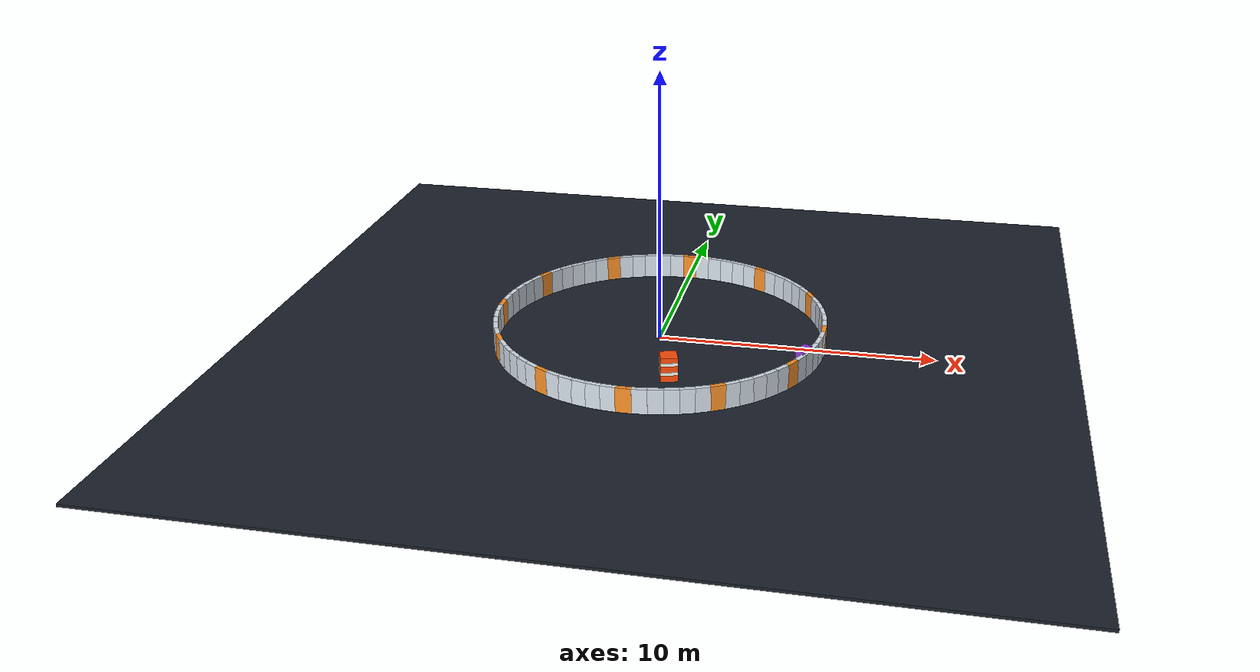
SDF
<sdf version="1.9">
 <world name="loop_course">
  <model name="ground">
   <static>true</static>
   <link name="ground">
    <collision name="ground_collision">
     <pose>0 0 -0.05 0 0 0</pose>
     <geometry><box><size>30 30 0.1</size></box></geometry>
    </collision>
    <visual name="ground_visual">
     <pose>0 0 -0.05 0 0 0</pose>
     <geometry><box><size>30 30 0.1</size></box></geometry>
     <material><ambient>0.105 0.13 0.17 1</ambient><diffuse>0.105 0.13 0.17 1</diffuse></material>
    </visual>
   </link>
  </model>
  <model name="outer_wall">
   <static>true</static>
   <link name="wall">
    <collision name="wall_0">
     <pose>6.0 0.0 0.45 0 0 1.5707963267948966</pose>
     <geometry><box><size>0.5489313149021448 0.16 0.9</size></box></geometry>
    </collision>
    <visual name="wall_visual_0">
     <pose>6.0 0.0 0.45 0 0 1.5707963267948966</pose>
     <geometry><box><size>0.5489313149021448 0.16 0.9</size></box></geometry>
     <material><ambient>0.98 0.57 0.16 1</ambient><diffuse>0.98 0.57 0.16 1</diffuse></material>
    </visual>
    <collision name="wall_1">
     <pose>5.977168188550474 0.522934456485949 0.45 0 0 1.658062789394613</pose>
     <geometry><box><size>0.5489313149021448 0.16 0.9</size></box></geometry>
    </collision>
    <visual name="wall_visual_1">
     <pose>5.977168188550474 0.522934456485949 0.45 0 0 1.658062789394613</pose>
     <geometry><box><size>0.5489313149021448 0.16 0.9</size></box></geometry>
     <material><ambient>0.84 0.88 0.92 1</ambient><diffuse>0.84 0.88 0.92 1</diffuse></material>
    </visual>
    <collision name="wall_2">
     <pose>5.908846518073248 1.041889066001582 0.45 0 0 1.7453292519943295</pose>
     <geometry><box><size>0.5489313149021448 0.16 0.9</size></box></geometry>
    </collision>
    <visual name="wall_visual_2">
     <pose>5.908846518073248 1.041889066001582 0.45 0 0 1.7453292519943295</pose>
     <geometry><box><size>0.5489313149021448 0.16 0.9</size></box></geometry>
     <material><ambient>0.84 0.88 0.92 1</ambient><diffuse>0.84 0.88 0.92 1</diffuse></material>
    </visual>
    <collision name="wall_3">
     <pose>5.79555495773441 1.5529142706151244 0.45 0 0 1.832595714594046</pose>
     <geometry><box><size>0.5489313149021448 0.16 0.9</size></box></geometry>
    </collision>
    <visual name="wall_visual_3">
     <pose>5.79555495773441 1.5529142706151244 0.45 0 0 1.832595714594046</pose>
     <geometry><box><size>0.5489313149021448 0.16 0.9</size></box></geometry>
     <material><ambient>0.84 0.88 0.92 1</ambient><diffuse>0.84 0.88 0.92 1</diffuse></material>
    </visual>
    <collision name="wall_4">
     <pose>5.638155724715451 2.0521208599540124 0.45 0 0 1.9198621771937625</pose>
     <geometry><box><size>0.5489313149021448 0.16 0.9</size></box></geometry>
    </collision>
    <visual name="wall_visual_4">
     <pose>5.638155724715451 2.0521208599540124 0.45 0 0 1.9198621771937625</pose>
     <geometry><box><size>0.5489313149021448 0.16 0.9</size></box></geometry>
     <material><ambient>0.84 0.88 0.92 1</ambient><diffuse>0.84 0.88 0.92 1</diffuse></material>
    </visual>
    <collision name="wall_5">
     <pose>5.437846722219899 2.5357095704441965 0.45 0 0 2.007128639793479</pose>
     <geometry><box><size>0.5489313149021448 0.16 0.9</size></box></geometry>
    </collision>
    <visual name="wall_visual_5">
     <pose>5.437846722219899 2.5357095704441965 0.45 0 0 2.007128639793479</pose>
     <geometry><box><size>0.5489313149021448 0.16 0.9</size></box></geometry>
     <material><ambient>0.84 0.88 0.92 1</ambient><diffuse>0.84 0.88 0.92 1</diffuse></material>
    </visual>
    <collision name="wall_6">
     <pose>5.196152422706632 2.9999999999999996 0.45 0 0 2.0943951023931953</pose>
     <geometry><box><size>0.5489313149021448 0.16 0.9</size></box></geometry>
    </collision>
    <visual name="wall_visual_6">
     <pose>5.196152422706632 2.9999999999999996 0.45 0 0 2.0943951023931953</pose>
     <geometry><box><size>0.5489313149021448 0.16 0.9</size></box></geometry>
     <material><ambient>0.98 0.57 0.16 1</ambient><diffuse>0.98 0.57 0.16 1</diffuse></material>
    </visual>
    <collision name="wall_7">
     <pose>4.914912265733951 3.4414586181062763 0.45 0 0 2.181661564992912</pose>
     <geometry><box><size>0.5489313149021448 0.16 0.9</size></box></geometry>
    </collision>
    <visual name="wall_visual_7">
     <pose>4.914912265733951 3.4414586181062763 0.45 0 0 2.181661564992912</pose>
     <geometry><box><size>0.5489313149021448 0.16 0.9</size></box></geometry>
     <material><ambient>0.84 0.88 0.92 1</ambient><diffuse>0.84 0.88 0.92 1</diffuse></material>
    </visual>
    <collision name="wall_8">
     <pose>4.596266658713868 3.8567256581192355 0.45 0 0 2.2689280275926285</pose>
     <geometry><box><size>0.5489313149021448 0.16 0.9</size></box></geometry>
    </collision>
    <visual name="wall_visual_8">
     <pose>4.596266658713868 3.8567256581192355 0.45 0 0 2.2689280275926285</pose>
     <geometry><box><size>0.5489313149021448 0.16 0.9</size></box></geometry>
     <material><ambient>0.84 0.88 0.92 1</ambient><diffuse>0.84 0.88 0.92 1</diffuse></material>
    </visual>
    <collision name="wall_9">
     <pose>4.242640687119286 4.242640687119285 0.45 0 0 2.356194490192345</pose>
     <geometry><box><size>0.5489313149021448 0.16 0.9</size></box></geometry>
    </collision>
    <visual name="wall_visual_9">
     <pose>4.242640687119286 4.242640687119285 0.45 0 0 2.356194490192345</pose>
     <geometry><box><size>0.5489313149021448 0.16 0.9</size></box></geometry>
     <material><ambient>0.84 0.88 0.92 1</ambient><diffuse>0.84 0.88 0.92 1</diffuse></material>
    </visual>
    <collision name="wall_10">
     <pose>3.8567256581192364 4.596266658713868 0.45 0 0 2.443460952792061</pose>
     <geometry><box><size>0.5489313149021448 0.16 0.9</size></box></geometry>
    </collision>
    <visual name="wall_visual_10">
     <pose>3.8567256581192364 4.596266658713868 0.45 0 0 2.443460952792061</pose>
     <geometry><box><size>0.5489313149021448 0.16 0.9</size></box></geometry>
     <material><ambient>0.84 0.88 0.92 1</ambient><diffuse>0.84 0.88 0.92 1</diffuse></material>
    </visual>
    <collision name="wall_11">
     <pose>3.441458618106277 4.91491226573395 0.45 0 0 2.5307274153917776</pose>
     <geometry><box><size>0.5489313149021448 0.16 0.9</size></box></geometry>
    </collision>
    <visual name="wall_visual_11">
     <pose>3.441458618106277 4.91491226573395 0.45 0 0 2.5307274153917776</pose>
     <geometry><box><size>0.5489313149021448 0.16 0.9</size></box></geometry>
     <material><ambient>0.84 0.88 0.92 1</ambient><diffuse>0.84 0.88 0.92 1</diffuse></material>
    </visual>
    <collision name="wall_12">
     <pose>3.000000000000001 5.196152422706632 0.45 0 0 2.617993877991494</pose>
     <geometry><box><size>0.5489313149021448 0.16 0.9</size></box></geometry>
    </collision>
    <visual name="wall_visual_12">
     <pose>3.000000000000001 5.196152422706632 0.45 0 0 2.617993877991494</pose>
     <geometry><box><size>0.5489313149021448 0.16 0.9</size></box></geometry>
     <material><ambient>0.98 0.57 0.16 1</ambient><diffuse>0.98 0.57 0.16 1</diffuse></material>
    </visual>
    <collision name="wall_13">
     <pose>2.5357095704441965 5.437846722219899 0.45 0 0 2.705260340591211</pose>
     <geometry><box><size>0.5489313149021448 0.16 0.9</size></box></geometry>
    </collision>
    <visual name="wall_visual_13">
     <pose>2.5357095704441965 5.437846722219899 0.45 0 0 2.705260340591211</pose>
     <geometry><box><size>0.5489313149021448 0.16 0.9</size></box></geometry>
     <material><ambient>0.84 0.88 0.92 1</ambient><diffuse>0.84 0.88 0.92 1</diffuse></material>
    </visual>
    <collision name="wall_14">
     <pose>2.052120859954013 5.63815572471545 0.45 0 0 2.792526803190927</pose>
     <geometry><box><size>0.5489313149021448 0.16 0.9</size></box></geometry>
    </collision>
    <visual name="wall_visual_14">
     <pose>2.052120859954013 5.63815572471545 0.45 0 0 2.792526803190927</pose>
     <geometry><box><size>0.5489313149021448 0.16 0.9</size></box></geometry>
     <material><ambient>0.84 0.88 0.92 1</ambient><diffuse>0.84 0.88 0.92 1</diffuse></material>
    </visual>
    <collision name="wall_15">
     <pose>1.5529142706151258 5.795554957734409 0.45 0 0 2.8797932657906435</pose>
     <geometry><box><size>0.5489313149021448 0.16 0.9</size></box></geometry>
    </collision>
    <visual name="wall_visual_15">
     <pose>1.5529142706151258 5.795554957734409 0.45 0 0 2.8797932657906435</pose>
     <geometry><box><size>0.5489313149021448 0.16 0.9</size></box></geometry>
     <material><ambient>0.84 0.88 0.92 1</ambient><diffuse>0.84 0.88 0.92 1</diffuse></material>
    </visual>
    <collision name="wall_16">
     <pose>1.0418890660015825 5.908846518073248 0.45 0 0 2.9670597283903604</pose>
     <geometry><box><size>0.5489313149021448 0.16 0.9</size></box></geometry>
    </collision>
    <visual name="wall_visual_16">
     <pose>1.0418890660015825 5.908846518073248 0.45 0 0 2.9670597283903604</pose>
     <geometry><box><size>0.5489313149021448 0.16 0.9</size></box></geometry>
     <material><ambient>0.84 0.88 0.92 1</ambient><diffuse>0.84 0.88 0.92 1</diffuse></material>
    </visual>
    <collision name="wall_17">
     <pose>0.5229344564859488 5.977168188550474 0.45 0 0 3.0543261909900767</pose>
     <geometry><box><size>0.5489313149021448 0.16 0.9</size></box></geometry>
    </collision>
    <visual name="wall_visual_17">
     <pose>0.5229344564859488 5.977168188550474 0.45 0 0 3.0543261909900767</pose>
     <geometry><box><size>0.5489313149021448 0.16 0.9</size></box></geometry>
     <material><ambient>0.84 0.88 0.92 1</ambient><diffuse>0.84 0.88 0.92 1</diffuse></material>
    </visual>
    <collision name="wall_18">
     <pose>3.6739403974420594e-16 6.0 0.45 0 0 3.141592653589793</pose>
     <geometry><box><size>0.5489313149021448 0.16 0.9</size></box></geometry>
    </collision>
    <visual name="wall_visual_18">
     <pose>3.6739403974420594e-16 6.0 0.45 0 0 3.141592653589793</pose>
     <geometry><box><size>0.5489313149021448 0.16 0.9</size></box></geometry>
     <material><ambient>0.98 0.57 0.16 1</ambient><diffuse>0.98 0.57 0.16 1</diffuse></material>
    </visual>
    <collision name="wall_19">
     <pose>-0.522934456485948 5.977168188550474 0.45 0 0 3.2288591161895095</pose>
     <geometry><box><size>0.5489313149021448 0.16 0.9</size></box></geometry>
    </collision>
    <visual name="wall_visual_19">
     <pose>-0.522934456485948 5.977168188550474 0.45 0 0 3.2288591161895095</pose>
     <geometry><box><size>0.5489313149021448 0.16 0.9</size></box></geometry>
     <material><ambient>0.84 0.88 0.92 1</ambient><diffuse>0.84 0.88 0.92 1</diffuse></material>
    </visual>
    <collision name="wall_20">
     <pose>-1.0418890660015818 5.908846518073248 0.45 0 0 3.316125578789226</pose>
     <geometry><box><size>0.5489313149021448 0.16 0.9</size></box></geometry>
    </collision>
    <visual name="wall_visual_20">
     <pose>-1.0418890660015818 5.908846518073248 0.45 0 0 3.316125578789226</pose>
     <geometry><box><size>0.5489313149021448 0.16 0.9</size></box></geometry>
     <material><ambient>0.84 0.88 0.92 1</ambient><diffuse>0.84 0.88 0.92 1</diffuse></material>
    </visual>
    <collision name="wall_21">
     <pose>-1.552914270615125 5.79555495773441 0.45 0 0 3.4033920413889427</pose>
     <geometry><box><size>0.5489313149021448 0.16 0.9</size></box></geometry>
    </collision>
    <visual name="wall_visual_21">
     <pose>-1.552914270615125 5.79555495773441 0.45 0 0 3.4033920413889427</pose>
     <geometry><box><size>0.5489313149021448 0.16 0.9</size></box></geometry>
     <material><ambient>0.84 0.88 0.92 1</ambient><diffuse>0.84 0.88 0.92 1</diffuse></material>
    </visual>
    <collision name="wall_22">
     <pose>-2.052120859954011 5.638155724715451 0.45 0 0 3.4906585039886586</pose>
     <geometry><box><size>0.5489313149021448 0.16 0.9</size></box></geometry>
    </collision>
    <visual name="wall_visual_22">
     <pose>-2.052120859954011 5.638155724715451 0.45 0 0 3.4906585039886586</pose>
     <geometry><box><size>0.5489313149021448 0.16 0.9</size></box></geometry>
     <material><ambient>0.84 0.88 0.92 1</ambient><diffuse>0.84 0.88 0.92 1</diffuse></material>
    </visual>
    <collision name="wall_23">
     <pose>-2.535709570444196 5.4378467222199 0.45 0 0 3.5779249665883754</pose>
     <geometry><box><size>0.5489313149021448 0.16 0.9</size></box></geometry>
    </collision>
    <visual name="wall_visual_23">
     <pose>-2.535709570444196 5.4378467222199 0.45 0 0 3.5779249665883754</pose>
     <geometry><box><size>0.5489313149021448 0.16 0.9</size></box></geometry>
     <material><ambient>0.84 0.88 0.92 1</ambient><diffuse>0.84 0.88 0.92 1</diffuse></material>
    </visual>
    <collision name="wall_24">
     <pose>-2.9999999999999987 5.196152422706632 0.45 0 0 3.665191429188092</pose>
     <geometry><box><size>0.5489313149021448 0.16 0.9</size></box></geometry>
    </collision>
    <visual name="wall_visual_24">
     <pose>-2.9999999999999987 5.196152422706632 0.45 0 0 3.665191429188092</pose>
     <geometry><box><size>0.5489313149021448 0.16 0.9</size></box></geometry>
     <material><ambient>0.98 0.57 0.16 1</ambient><diffuse>0.98 0.57 0.16 1</diffuse></material>
    </visual>
    <collision name="wall_25">
     <pose>-3.441458618106277 4.91491226573395 0.45 0 0 3.7524578917878086</pose>
     <geometry><box><size>0.5489313149021448 0.16 0.9</size></box></geometry>
    </collision>
    <visual name="wall_visual_25">
     <pose>-3.441458618106277 4.91491226573395 0.45 0 0 3.7524578917878086</pose>
     <geometry><box><size>0.5489313149021448 0.16 0.9</size></box></geometry>
     <material><ambient>0.84 0.88 0.92 1</ambient><diffuse>0.84 0.88 0.92 1</diffuse></material>
    </visual>
    <collision name="wall_26">
     <pose>-3.8567256581192364 4.596266658713868 0.45 0 0 3.839724354387525</pose>
     <geometry><box><size>0.5489313149021448 0.16 0.9</size></box></geometry>
    </collision>
    <visual name="wall_visual_26">
     <pose>-3.8567256581192364 4.596266658713868 0.45 0 0 3.839724354387525</pose>
     <geometry><box><size>0.5489313149021448 0.16 0.9</size></box></geometry>
     <material><ambient>0.84 0.88 0.92 1</ambient><diffuse>0.84 0.88 0.92 1</diffuse></material>
    </visual>
    <collision name="wall_27">
     <pose>-4.242640687119285 4.242640687119286 0.45 0 0 3.9269908169872414</pose>
     <geometry><box><size>0.5489313149021448 0.16 0.9</size></box></geometry>
    </collision>
    <visual name="wall_visual_27">
     <pose>-4.242640687119285 4.242640687119286 0.45 0 0 3.9269908169872414</pose>
     <geometry><box><size>0.5489313149021448 0.16 0.9</size></box></geometry>
     <material><ambient>0.84 0.88 0.92 1</ambient><diffuse>0.84 0.88 0.92 1</diffuse></material>
    </visual>
    <collision name="wall_28">
     <pose>-4.596266658713867 3.856725658119237 0.45 0 0 4.014257279586958</pose>
     <geometry><box><size>0.5489313149021448 0.16 0.9</size></box></geometry>
    </collision>
    <visual name="wall_visual_28">
     <pose>-4.596266658713867 3.856725658119237 0.45 0 0 4.014257279586958</pose>
     <geometry><box><size>0.5489313149021448 0.16 0.9</size></box></geometry>
     <material><ambient>0.84 0.88 0.92 1</ambient><diffuse>0.84 0.88 0.92 1</diffuse></material>
    </visual>
    <collision name="wall_29">
     <pose>-4.9149122657339515 3.4414586181062754 0.45 0 0 4.101523742186675</pose>
     <geometry><box><size>0.5489313149021448 0.16 0.9</size></box></geometry>
    </collision>
    <visual name="wall_visual_29">
     <pose>-4.9149122657339515 3.4414586181062754 0.45 0 0 4.101523742186675</pose>
     <geometry><box><size>0.5489313149021448 0.16 0.9</size></box></geometry>
     <material><ambient>0.84 0.88 0.92 1</ambient><diffuse>0.84 0.88 0.92 1</diffuse></material>
    </visual>
    <collision name="wall_30">
     <pose>-5.196152422706631 3.0000000000000018 0.45 0 0 4.1887902047863905</pose>
     <geometry><box><size>0.5489313149021448 0.16 0.9</size></box></geometry>
    </collision>
    <visual name="wall_visual_30">
     <pose>-5.196152422706631 3.0000000000000018 0.45 0 0 4.1887902047863905</pose>
     <geometry><box><size>0.5489313149021448 0.16 0.9</size></box></geometry>
     <material><ambient>0.98 0.57 0.16 1</ambient><diffuse>0.98 0.57 0.16 1</diffuse></material>
    </visual>
    <collision name="wall_31">
     <pose>-5.437846722219899 2.535709570444197 0.45 0 0 4.276056667386108</pose>
     <geometry><box><size>0.5489313149021448 0.16 0.9</size></box></geometry>
    </collision>
    <visual name="wall_visual_31">
     <pose>-5.437846722219899 2.535709570444197 0.45 0 0 4.276056667386108</pose>
     <geometry><box><size>0.5489313149021448 0.16 0.9</size></box></geometry>
     <material><ambient>0.84 0.88 0.92 1</ambient><diffuse>0.84 0.88 0.92 1</diffuse></material>
    </visual>
    <collision name="wall_32">
     <pose>-5.63815572471545 2.0521208599540133 0.45 0 0 4.363323129985824</pose>
     <geometry><box><size>0.5489313149021448 0.16 0.9</size></box></geometry>
    </collision>
    <visual name="wall_visual_32">
     <pose>-5.63815572471545 2.0521208599540133 0.45 0 0 4.363323129985824</pose>
     <geometry><box><size>0.5489313149021448 0.16 0.9</size></box></geometry>
     <material><ambient>0.84 0.88 0.92 1</ambient><diffuse>0.84 0.88 0.92 1</diffuse></material>
    </visual>
    <collision name="wall_33">
     <pose>-5.79555495773441 1.5529142706151235 0.45 0 0 4.4505895925855405</pose>
     <geometry><box><size>0.5489313149021448 0.16 0.9</size></box></geometry>
    </collision>
    <visual name="wall_visual_33">
     <pose>-5.79555495773441 1.5529142706151235 0.45 0 0 4.4505895925855405</pose>
     <geometry><box><size>0.5489313149021448 0.16 0.9</size></box></geometry>
     <material><ambient>0.84 0.88 0.92 1</ambient><diffuse>0.84 0.88 0.92 1</diffuse></material>
    </visual>
    <collision name="wall_34">
     <pose>-5.908846518073248 1.0418890660015816 0.45 0 0 4.537856055185257</pose>
     <geometry><box><size>0.5489313149021448 0.16 0.9</size></box></geometry>
    </collision>
    <visual name="wall_visual_34">
     <pose>-5.908846518073248 1.0418890660015816 0.45 0 0 4.537856055185257</pose>
     <geometry><box><size>0.5489313149021448 0.16 0.9</size></box></geometry>
     <material><ambient>0.84 0.88 0.92 1</ambient><diffuse>0.84 0.88 0.92 1</diffuse></material>
    </visual>
    <collision name="wall_35">
     <pose>-5.977168188550474 0.5229344564859492 0.45 0 0 4.625122517784973</pose>
     <geometry><box><size>0.5489313149021448 0.16 0.9</size></box></geometry>
    </collision>
    <visual name="wall_visual_35">
     <pose>-5.977168188550474 0.5229344564859492 0.45 0 0 4.625122517784973</pose>
     <geometry><box><size>0.5489313149021448 0.16 0.9</size></box></geometry>
     <material><ambient>0.84 0.88 0.92 1</ambient><diffuse>0.84 0.88 0.92 1</diffuse></material>
    </visual>
    <collision name="wall_36">
     <pose>-6.0 7.347880794884119e-16 0.45 0 0 4.71238898038469</pose>
     <geometry><box><size>0.5489313149021448 0.16 0.9</size></box></geometry>
    </collision>
    <visual name="wall_visual_36">
     <pose>-6.0 7.347880794884119e-16 0.45 0 0 4.71238898038469</pose>
     <geometry><box><size>0.5489313149021448 0.16 0.9</size></box></geometry>
     <material><ambient>0.98 0.57 0.16 1</ambient><diffuse>0.98 0.57 0.16 1</diffuse></material>
    </visual>
    <collision name="wall_37">
     <pose>-5.977168188550474 -0.5229344564859477 0.45 0 0 4.799655442984406</pose>
     <geometry><box><size>0.5489313149021448 0.16 0.9</size></box></geometry>
    </collision>
    <visual name="wall_visual_37">
     <pose>-5.977168188550474 -0.5229344564859477 0.45 0 0 4.799655442984406</pose>
     <geometry><box><size>0.5489313149021448 0.16 0.9</size></box></geometry>
     <material><ambient>0.84 0.88 0.92 1</ambient><diffuse>0.84 0.88 0.92 1</diffuse></material>
    </visual>
    <collision name="wall_38">
     <pose>-5.908846518073249 -1.04188906600158 0.45 0 0 4.886921905584122</pose>
     <geometry><box><size>0.5489313149021448 0.16 0.9</size></box></geometry>
    </collision>
    <visual name="wall_visual_38">
     <pose>-5.908846518073249 -1.04188906600158 0.45 0 0 4.886921905584122</pose>
     <geometry><box><size>0.5489313149021448 0.16 0.9</size></box></geometry>
     <material><ambient>0.84 0.88 0.92 1</ambient><diffuse>0.84 0.88 0.92 1</diffuse></material>
    </visual>
    <collision name="wall_39">
     <pose>-5.79555495773441 -1.5529142706151222 0.45 0 0 4.974188368183839</pose>
     <geometry><box><size>0.5489313149021448 0.16 0.9</size></box></geometry>
    </collision>
    <visual name="wall_visual_39">
     <pose>-5.79555495773441 -1.5529142706151222 0.45 0 0 4.974188368183839</pose>
     <geometry><box><size>0.5489313149021448 0.16 0.9</size></box></geometry>
     <material><ambient>0.84 0.88 0.92 1</ambient><diffuse>0.84 0.88 0.92 1</diffuse></material>
    </visual>
    <collision name="wall_40">
     <pose>-5.638155724715451 -2.052120859954012 0.45 0 0 5.061454830783555</pose>
     <geometry><box><size>0.5489313149021448 0.16 0.9</size></box></geometry>
    </collision>
    <visual name="wall_visual_40">
     <pose>-5.638155724715451 -2.052120859954012 0.45 0 0 5.061454830783555</pose>
     <geometry><box><size>0.5489313149021448 0.16 0.9</size></box></geometry>
     <material><ambient>0.84 0.88 0.92 1</ambient><diffuse>0.84 0.88 0.92 1</diffuse></material>
    </visual>
    <collision name="wall_41">
     <pose>-5.437846722219902 -2.5357095704441934 0.45 0 0 5.148721293383272</pose>
     <geometry><box><size>0.5489313149021448 0.16 0.9</size></box></geometry>
    </collision>
    <visual name="wall_visual_41">
     <pose>-5.437846722219902 -2.5357095704441934 0.45 0 0 5.148721293383272</pose>
     <geometry><box><size>0.5489313149021448 0.16 0.9</size></box></geometry>
     <material><ambient>0.84 0.88 0.92 1</ambient><diffuse>0.84 0.88 0.92 1</diffuse></material>
    </visual>
    <collision name="wall_42">
     <pose>-5.196152422706632 -3.000000000000001 0.45 0 0 5.235987755982989</pose>
     <geometry><box><size>0.5489313149021448 0.16 0.9</size></box></geometry>
    </collision>
    <visual name="wall_visual_42">
     <pose>-5.196152422706632 -3.000000000000001 0.45 0 0 5.235987755982989</pose>
     <geometry><box><size>0.5489313149021448 0.16 0.9</size></box></geometry>
     <material><ambient>0.98 0.57 0.16 1</ambient><diffuse>0.98 0.57 0.16 1</diffuse></material>
    </visual>
    <collision name="wall_43">
     <pose>-4.914912265733952 -3.441458618106275 0.45 0 0 5.323254218582704</pose>
     <geometry><box><size>0.5489313149021448 0.16 0.9</size></box></geometry>
    </collision>
    <visual name="wall_visual_43">
     <pose>-4.914912265733952 -3.441458618106275 0.45 0 0 5.323254218582704</pose>
     <geometry><box><size>0.5489313149021448 0.16 0.9</size></box></geometry>
     <material><ambient>0.84 0.88 0.92 1</ambient><diffuse>0.84 0.88 0.92 1</diffuse></material>
    </visual>
    <collision name="wall_44">
     <pose>-4.59626665871387 -3.8567256581192337 0.45 0 0 5.410520681182421</pose>
     <geometry><box><size>0.5489313149021448 0.16 0.9</size></box></geometry>
    </collision>
    <visual name="wall_visual_44">
     <pose>-4.59626665871387 -3.8567256581192337 0.45 0 0 5.410520681182421</pose>
     <geometry><box><size>0.5489313149021448 0.16 0.9</size></box></geometry>
     <material><ambient>0.84 0.88 0.92 1</ambient><diffuse>0.84 0.88 0.92 1</diffuse></material>
    </visual>
    <collision name="wall_45">
     <pose>-4.242640687119286 -4.242640687119285 0.45 0 0 5.497787143782138</pose>
     <geometry><box><size>0.5489313149021448 0.16 0.9</size></box></geometry>
    </collision>
    <visual name="wall_visual_45">
     <pose>-4.242640687119286 -4.242640687119285 0.45 0 0 5.497787143782138</pose>
     <geometry><box><size>0.5489313149021448 0.16 0.9</size></box></geometry>
     <material><ambient>0.84 0.88 0.92 1</ambient><diffuse>0.84 0.88 0.92 1</diffuse></material>
    </visual>
    <collision name="wall_46">
     <pose>-3.856725658119237 -4.596266658713867 0.45 0 0 5.585053606381854</pose>
     <geometry><box><size>0.5489313149021448 0.16 0.9</size></box></geometry>
    </collision>
    <visual name="wall_visual_46">
     <pose>-3.856725658119237 -4.596266658713867 0.45 0 0 5.585053606381854</pose>
     <geometry><box><size>0.5489313149021448 0.16 0.9</size></box></geometry>
     <material><ambient>0.84 0.88 0.92 1</ambient><diffuse>0.84 0.88 0.92 1</diffuse></material>
    </visual>
    <collision name="wall_47">
     <pose>-3.4414586181062745 -4.914912265733953 0.45 0 0 5.672320068981572</pose>
     <geometry><box><size>0.5489313149021448 0.16 0.9</size></box></geometry>
    </collision>
    <visual name="wall_visual_47">
     <pose>-3.4414586181062745 -4.914912265733953 0.45 0 0 5.672320068981572</pose>
     <geometry><box><size>0.5489313149021448 0.16 0.9</size></box></geometry>
     <material><ambient>0.84 0.88 0.92 1</ambient><diffuse>0.84 0.88 0.92 1</diffuse></material>
    </visual>
    <collision name="wall_48">
     <pose>-3.0000000000000027 -5.19615242270663 0.45 0 0 5.759586531581287</pose>
     <geometry><box><size>0.5489313149021448 0.16 0.9</size></box></geometry>
    </collision>
    <visual name="wall_visual_48">
     <pose>-3.0000000000000027 -5.19615242270663 0.45 0 0 5.759586531581287</pose>
     <geometry><box><size>0.5489313149021448 0.16 0.9</size></box></geometry>
     <material><ambient>0.98 0.57 0.16 1</ambient><diffuse>0.98 0.57 0.16 1</diffuse></material>
    </visual>
    <collision name="wall_49">
     <pose>-2.5357095704441996 -5.4378467222198985 0.45 0 0 5.8468529941810035</pose>
     <geometry><box><size>0.5489313149021448 0.16 0.9</size></box></geometry>
    </collision>
    <visual name="wall_visual_49">
     <pose>-2.5357095704441996 -5.4378467222198985 0.45 0 0 5.8468529941810035</pose>
     <geometry><box><size>0.5489313149021448 0.16 0.9</size></box></geometry>
     <material><ambient>0.84 0.88 0.92 1</ambient><diffuse>0.84 0.88 0.92 1</diffuse></material>
    </visual>
    <collision name="wall_50">
     <pose>-2.0521208599540115 -5.638155724715451 0.45 0 0 5.934119456780721</pose>
     <geometry><box><size>0.5489313149021448 0.16 0.9</size></box></geometry>
    </collision>
    <visual name="wall_visual_50">
     <pose>-2.0521208599540115 -5.638155724715451 0.45 0 0 5.934119456780721</pose>
     <geometry><box><size>0.5489313149021448 0.16 0.9</size></box></geometry>
     <material><ambient>0.84 0.88 0.92 1</ambient><diffuse>0.84 0.88 0.92 1</diffuse></material>
    </visual>
    <collision name="wall_51">
     <pose>-1.5529142706151238 -5.79555495773441 0.45 0 0 6.021385919380437</pose>
     <geometry><box><size>0.5489313149021448 0.16 0.9</size></box></geometry>
    </collision>
    <visual name="wall_visual_51">
     <pose>-1.5529142706151238 -5.79555495773441 0.45 0 0 6.021385919380437</pose>
     <geometry><box><size>0.5489313149021448 0.16 0.9</size></box></geometry>
     <material><ambient>0.84 0.88 0.92 1</ambient><diffuse>0.84 0.88 0.92 1</diffuse></material>
    </visual>
    <collision name="wall_52">
     <pose>-1.041889066001582 -5.908846518073248 0.45 0 0 6.1086523819801535</pose>
     <geometry><box><size>0.5489313149021448 0.16 0.9</size></box></geometry>
    </collision>
    <visual name="wall_visual_52">
     <pose>-1.041889066001582 -5.908846518073248 0.45 0 0 6.1086523819801535</pose>
     <geometry><box><size>0.5489313149021448 0.16 0.9</size></box></geometry>
     <material><ambient>0.84 0.88 0.92 1</ambient><diffuse>0.84 0.88 0.92 1</diffuse></material>
    </visual>
    <collision name="wall_53">
     <pose>-0.5229344564859495 -5.977168188550474 0.45 0 0 6.19591884457987</pose>
     <geometry><box><size>0.5489313149021448 0.16 0.9</size></box></geometry>
    </collision>
    <visual name="wall_visual_53">
     <pose>-0.5229344564859495 -5.977168188550474 0.45 0 0 6.19591884457987</pose>
     <geometry><box><size>0.5489313149021448 0.16 0.9</size></box></geometry>
     <material><ambient>0.84 0.88 0.92 1</ambient><diffuse>0.84 0.88 0.92 1</diffuse></material>
    </visual>
    <collision name="wall_54">
     <pose>-1.102182119232618e-15 -6.0 0.45 0 0 6.283185307179586</pose>
     <geometry><box><size>0.5489313149021448 0.16 0.9</size></box></geometry>
    </collision>
    <visual name="wall_visual_54">
     <pose>-1.102182119232618e-15 -6.0 0.45 0 0 6.283185307179586</pose>
     <geometry><box><size>0.5489313149021448 0.16 0.9</size></box></geometry>
     <material><ambient>0.98 0.57 0.16 1</ambient><diffuse>0.98 0.57 0.16 1</diffuse></material>
    </visual>
    <collision name="wall_55">
     <pose>0.5229344564859473 -5.977168188550474 0.45 0 0 6.370451769779303</pose>
     <geometry><box><size>0.5489313149021448 0.16 0.9</size></box></geometry>
    </collision>
    <visual name="wall_visual_55">
     <pose>0.5229344564859473 -5.977168188550474 0.45 0 0 6.370451769779303</pose>
     <geometry><box><size>0.5489313149021448 0.16 0.9</size></box></geometry>
     <material><ambient>0.84 0.88 0.92 1</ambient><diffuse>0.84 0.88 0.92 1</diffuse></material>
    </visual>
    <collision name="wall_56">
     <pose>1.0418890660015798 -5.908846518073249 0.45 0 0 6.457718232379019</pose>
     <geometry><box><size>0.5489313149021448 0.16 0.9</size></box></geometry>
    </collision>
    <visual name="wall_visual_56">
     <pose>1.0418890660015798 -5.908846518073249 0.45 0 0 6.457718232379019</pose>
     <geometry><box><size>0.5489313149021448 0.16 0.9</size></box></geometry>
     <material><ambient>0.84 0.88 0.92 1</ambient><diffuse>0.84 0.88 0.92 1</diffuse></material>
    </visual>
    <collision name="wall_57">
     <pose>1.5529142706151218 -5.79555495773441 0.45 0 0 6.544984694978735</pose>
     <geometry><box><size>0.5489313149021448 0.16 0.9</size></box></geometry>
    </collision>
    <visual name="wall_visual_57">
     <pose>1.5529142706151218 -5.79555495773441 0.45 0 0 6.544984694978735</pose>
     <geometry><box><size>0.5489313149021448 0.16 0.9</size></box></geometry>
     <material><ambient>0.84 0.88 0.92 1</ambient><diffuse>0.84 0.88 0.92 1</diffuse></material>
    </visual>
    <collision name="wall_58">
     <pose>2.052120859954014 -5.63815572471545 0.45 0 0 6.632251157578453</pose>
     <geometry><box><size>0.5489313149021448 0.16 0.9</size></box></geometry>
    </collision>
    <visual name="wall_visual_58">
     <pose>2.052120859954014 -5.63815572471545 0.45 0 0 6.632251157578453</pose>
     <geometry><box><size>0.5489313149021448 0.16 0.9</size></box></geometry>
     <material><ambient>0.84 0.88 0.92 1</ambient><diffuse>0.84 0.88 0.92 1</diffuse></material>
    </visual>
    <collision name="wall_59">
     <pose>2.535709570444193 -5.437846722219902 0.45 0 0 6.719517620178168</pose>
     <geometry><box><size>0.5489313149021448 0.16 0.9</size></box></geometry>
    </collision>
    <visual name="wall_visual_59">
     <pose>2.535709570444193 -5.437846722219902 0.45 0 0 6.719517620178168</pose>
     <geometry><box><size>0.5489313149021448 0.16 0.9</size></box></geometry>
     <material><ambient>0.84 0.88 0.92 1</ambient><diffuse>0.84 0.88 0.92 1</diffuse></material>
    </visual>
    <collision name="wall_60">
     <pose>2.999999999999996 -5.196152422706634 0.45 0 0 6.8067840827778845</pose>
     <geometry><box><size>0.5489313149021448 0.16 0.9</size></box></geometry>
    </collision>
    <visual name="wall_visual_60">
     <pose>2.999999999999996 -5.196152422706634 0.45 0 0 6.8067840827778845</pose>
     <geometry><box><size>0.5489313149021448 0.16 0.9</size></box></geometry>
     <material><ambient>0.98 0.57 0.16 1</ambient><diffuse>0.98 0.57 0.16 1</diffuse></material>
    </visual>
    <collision name="wall_61">
     <pose>3.4414586181062763 -4.914912265733951 0.45 0 0 6.894050545377602</pose>
     <geometry><box><size>0.5489313149021448 0.16 0.9</size></box></geometry>
    </collision>
    <visual name="wall_visual_61">
     <pose>3.4414586181062763 -4.914912265733951 0.45 0 0 6.894050545377602</pose>
     <geometry><box><size>0.5489313149021448 0.16 0.9</size></box></geometry>
     <material><ambient>0.84 0.88 0.92 1</ambient><diffuse>0.84 0.88 0.92 1</diffuse></material>
    </visual>
    <collision name="wall_62">
     <pose>3.8567256581192355 -4.596266658713869 0.45 0 0 6.981317007977318</pose>
     <geometry><box><size>0.5489313149021448 0.16 0.9</size></box></geometry>
    </collision>
    <visual name="wall_visual_62">
     <pose>3.8567256581192355 -4.596266658713869 0.45 0 0 6.981317007977318</pose>
     <geometry><box><size>0.5489313149021448 0.16 0.9</size></box></geometry>
     <material><ambient>0.84 0.88 0.92 1</ambient><diffuse>0.84 0.88 0.92 1</diffuse></material>
    </visual>
    <collision name="wall_63">
     <pose>4.242640687119284 -4.242640687119286 0.45 0 0 7.0685834705770345</pose>
     <geometry><box><size>0.5489313149021448 0.16 0.9</size></box></geometry>
    </collision>
    <visual name="wall_visual_63">
     <pose>4.242640687119284 -4.242640687119286 0.45 0 0 7.0685834705770345</pose>
     <geometry><box><size>0.5489313149021448 0.16 0.9</size></box></geometry>
     <material><ambient>0.84 0.88 0.92 1</ambient><diffuse>0.84 0.88 0.92 1</diffuse></material>
    </visual>
    <collision name="wall_64">
     <pose>4.5962666587138665 -3.8567256581192373 0.45 0 0 7.155849933176751</pose>
     <geometry><box><size>0.5489313149021448 0.16 0.9</size></box></geometry>
    </collision>
    <visual name="wall_visual_64">
     <pose>4.5962666587138665 -3.8567256581192373 0.45 0 0 7.155849933176751</pose>
     <geometry><box><size>0.5489313149021448 0.16 0.9</size></box></geometry>
     <material><ambient>0.84 0.88 0.92 1</ambient><diffuse>0.84 0.88 0.92 1</diffuse></material>
    </visual>
    <collision name="wall_65">
     <pose>4.91491226573395 -3.441458618106279 0.45 0 0 7.243116395776467</pose>
     <geometry><box><size>0.5489313149021448 0.16 0.9</size></box></geometry>
    </collision>
    <visual name="wall_visual_65">
     <pose>4.91491226573395 -3.441458618106279 0.45 0 0 7.243116395776467</pose>
     <geometry><box><size>0.5489313149021448 0.16 0.9</size></box></geometry>
     <material><ambient>0.84 0.88 0.92 1</ambient><diffuse>0.84 0.88 0.92 1</diffuse></material>
    </visual>
    <collision name="wall_66">
     <pose>5.196152422706633 -2.9999999999999982 0.45 0 0 7.3303828583761845</pose>
     <geometry><box><size>0.5489313149021448 0.16 0.9</size></box></geometry>
    </collision>
    <visual name="wall_visual_66">
     <pose>5.196152422706633 -2.9999999999999982 0.45 0 0 7.3303828583761845</pose>
     <geometry><box><size>0.5489313149021448 0.16 0.9</size></box></geometry>
     <material><ambient>0.98 0.57 0.16 1</ambient><diffuse>0.98 0.57 0.16 1</diffuse></material>
    </visual>
    <collision name="wall_67">
     <pose>5.4378467222198985 -2.5357095704442 0.45 0 0 7.4176493209759</pose>
     <geometry><box><size>0.5489313149021448 0.16 0.9</size></box></geometry>
    </collision>
    <visual name="wall_visual_67">
     <pose>5.4378467222198985 -2.5357095704442 0.45 0 0 7.4176493209759</pose>
     <geometry><box><size>0.5489313149021448 0.16 0.9</size></box></geometry>
     <material><ambient>0.84 0.88 0.92 1</ambient><diffuse>0.84 0.88 0.92 1</diffuse></material>
    </visual>
    <collision name="wall_68">
     <pose>5.638155724715451 -2.0521208599540115 0.45 0 0 7.504915783575617</pose>
     <geometry><box><size>0.5489313149021448 0.16 0.9</size></box></geometry>
    </collision>
    <visual name="wall_visual_68">
     <pose>5.638155724715451 -2.0521208599540115 0.45 0 0 7.504915783575617</pose>
     <geometry><box><size>0.5489313149021448 0.16 0.9</size></box></geometry>
     <material><ambient>0.84 0.88 0.92 1</ambient><diffuse>0.84 0.88 0.92 1</diffuse></material>
    </visual>
    <collision name="wall_69">
     <pose>5.79555495773441 -1.552914270615124 0.45 0 0 7.592182246175334</pose>
     <geometry><box><size>0.5489313149021448 0.16 0.9</size></box></geometry>
    </collision>
    <visual name="wall_visual_69">
     <pose>5.79555495773441 -1.552914270615124 0.45 0 0 7.592182246175334</pose>
     <geometry><box><size>0.5489313149021448 0.16 0.9</size></box></geometry>
     <material><ambient>0.84 0.88 0.92 1</ambient><diffuse>0.84 0.88 0.92 1</diffuse></material>
    </visual>
    <collision name="wall_70">
     <pose>5.908846518073248 -1.0418890660015823 0.45 0 0 7.67944870877505</pose>
     <geometry><box><size>0.5489313149021448 0.16 0.9</size></box></geometry>
    </collision>
    <visual name="wall_visual_70">
     <pose>5.908846518073248 -1.0418890660015823 0.45 0 0 7.67944870877505</pose>
     <geometry><box><size>0.5489313149021448 0.16 0.9</size></box></geometry>
     <material><ambient>0.84 0.88 0.92 1</ambient><diffuse>0.84 0.88 0.92 1</diffuse></material>
    </visual>
    <collision name="wall_71">
     <pose>5.977168188550474 -0.5229344564859499 0.45 0 0 7.766715171374766</pose>
     <geometry><box><size>0.5489313149021448 0.16 0.9</size></box></geometry>
    </collision>
    <visual name="wall_visual_71">
     <pose>5.977168188550474 -0.5229344564859499 0.45 0 0 7.766715171374766</pose>
     <geometry><box><size>0.5489313149021448 0.16 0.9</size></box></geometry>
     <material><ambient>0.84 0.88 0.92 1</ambient><diffuse>0.84 0.88 0.92 1</diffuse></material>
    </visual>
   </link>
  </model>
  <model name="obstacle_localization_0">
   <static>true</static>
   <pose>5.495330370157166 -2.00595217361439 .5 0 0 1.2207963267948967</pose>
   <link name="landmark">
    <collision name="marker"><geometry><box><size>0.65 0.3 1</size></box></geometry></collision>
    <visual name="marker_visual">
     <geometry><box><size>0.65 0.3 1</size></box></geometry>
     <material><ambient>.55 .2 .85 1</ambient><diffuse>.55 .2 .85 1</diffuse></material>
    </visual>
   </link>
  </model>
  <model name="obstacle_box_return">
   <static>true</static>
   <pose>0.9644514305749692 -3.2603425338546708 0 0 0 5.0</pose>
   <link name="obstacle_link">
    <collision name="obstacle_box_return_collision">
     <pose>0 0 .45 0 0 0</pose>
     <geometry><box><size>0.6 0.6 0.9</size></box></geometry>
    </collision>
    <visual name="obstacle_box_return_visual">
     <pose>0 0 .45 0 0 0</pose>
     <geometry><box><size>0.6 0.6 0.9</size></box></geometry>
     <material><ambient>1 .30 .035 1</ambient><diffuse>1 .30 .035 1</diffuse></material>
    </visual>
    <visual name="obstacle_box_return_stripe_0.3">
     <pose>0 0 0.3 0 0 0</pose>
     <geometry><box><size>.61 .61 .12</size></box></geometry>
     <material><ambient>.98 .98 .95 1</ambient><diffuse>.98 .98 .95 1</diffuse></material>
    </visual>
    <visual name="obstacle_box_return_stripe_0.65">
     <pose>0 0 0.65 0 0 0</pose>
     <geometry><box><size>.61 .61 .12</size></box></geometry>
     <material><ambient>.98 .98 .95 1</ambient><diffuse>.98 .98 .95 1</diffuse></material>
    </visual>
   </link>
  </model>
 </world>
</sdf>
